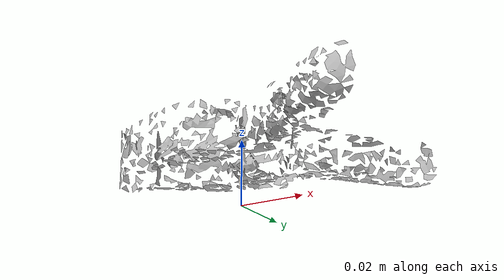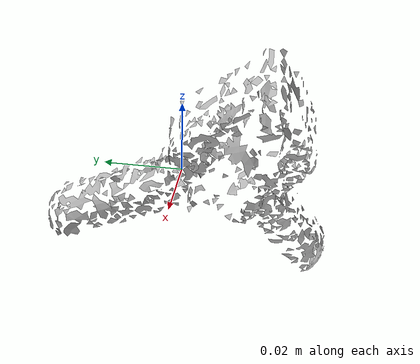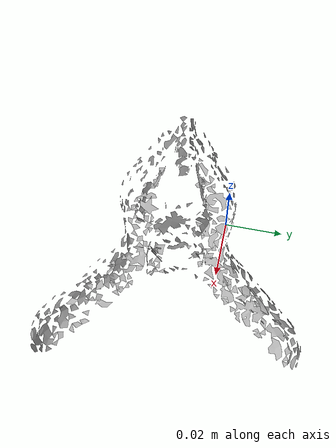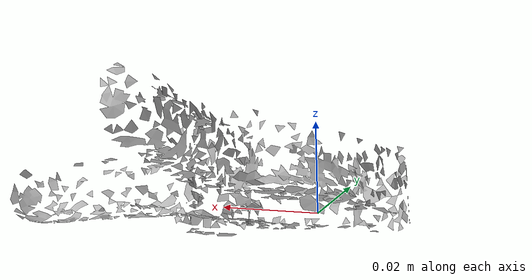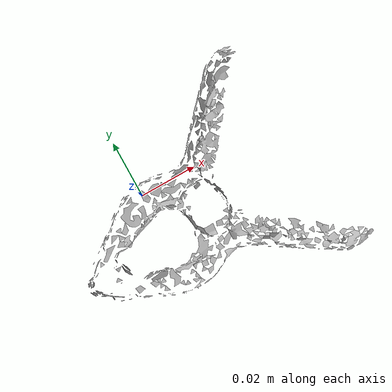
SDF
<?xml version="1.0" ?>
<sdf version="1.4">
  <model name='ycb_050_medium_clamp'>
    <link name='body'>
      <inertial>
        <mass>0.059</mass>
        <pose>0.0108274831213 -0.0149036000323 0.0126179349261 0 0 0</pose>
        <inertia>
          <ixx>1.54378911009e-05</ixx>
          <ixy>-1.03733971521e-06</ixy>
          <ixz>-8.13743500539e-08</ixz>
          <iyy>2.27067283909e-05</iyy>
          <iyz>1.4716308619e-07</iyz>
          <izz>3.47516022875e-05</izz>
        </inertia>
      </inertial>
      <visual name='ycb_050_medium_clamp_visual'>
        <pose>0 0 0 0 0 0</pose>
        <geometry>
          <mesh>
            <uri>model://ycb_050_medium_clamp/meshes/textured.dae</uri>
          </mesh>
        </geometry>
      </visual>
      <collision name='ycb_050_medium_clamp_collision'>
        <pose>0 0 0 0 0 0</pose>
        <geometry>
          <mesh>
            <uri>model://ycb_050_medium_clamp/meshes/nontextured.stl</uri>
          </mesh>
        </geometry>
        <max_contacts>10</max_contacts>
      </collision>
    </link>
  </model>
</sdf>
